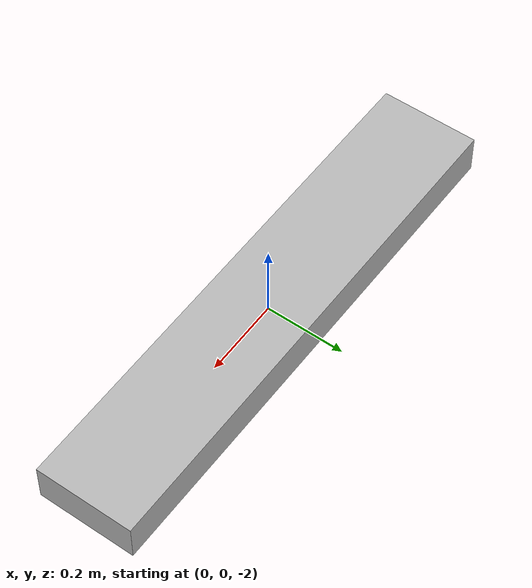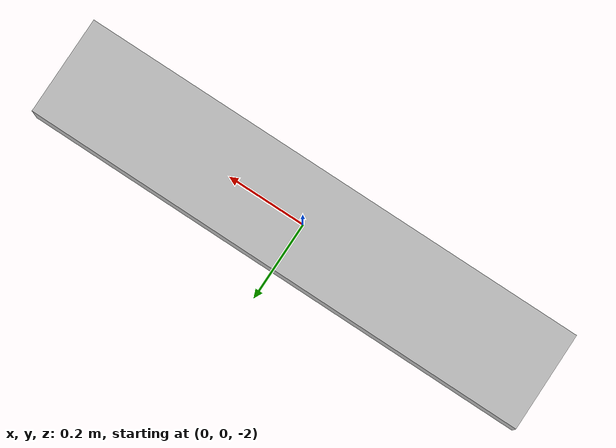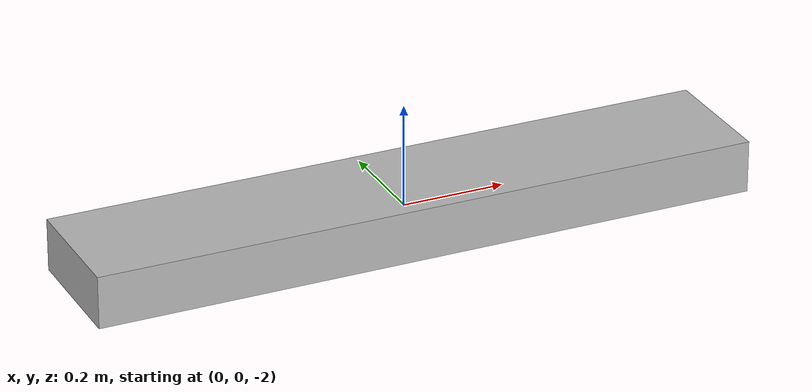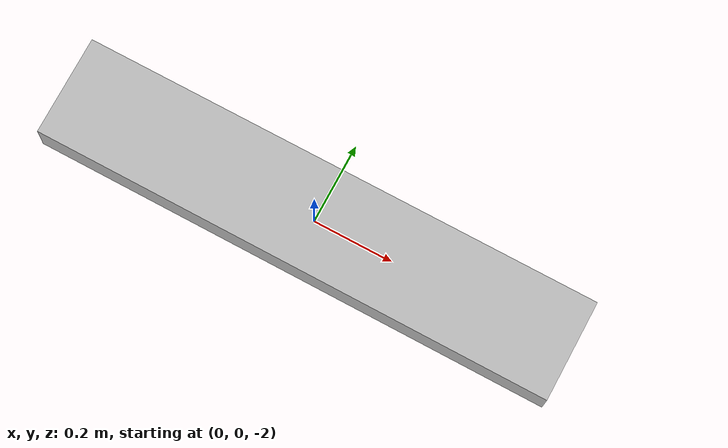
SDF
<?xml version="1.0"?>
<sdf version="1.10">
  <world name="ocean">
    <plugin filename="gz-sim-physics-system" name="gz::sim::systems::Physics"/>

    <plugin filename="gz-sim-buoyancy-system" name="gz::sim::systems::Buoyancy">
      <uniform_fluid_density>1025</uniform_fluid_density>
      <surface>0</surface>
    </plugin>

    <plugin filename="gz-sim-apply-link-wrench-system"
        name="gz::sim::systems::ApplyLinkWrench"/>

    <model name="seafloor">
      <static>true</static>
      <pose>0 0 -20 0 0 0</pose>
      <link name="link">
        <collision name="collision">
          <geometry><plane><normal>0 0 1</normal></plane></geometry>
        </collision>
      </link>
    </model>

    <model name="glider">
      <pose>0 0 -2 0 0 0</pose>
      <link name="body">
        <inertial>
          <mass>35.0</mass>
          <inertia>
            <ixx>1.0</ixx><iyy>4.0</iyy><izz>4.0</izz>
            <ixy>0</ixy><ixz>0</ixz><iyz>0</iyz>
          </inertia>
        </inertial>

        <collision name="collision">
          <geometry><box><size>1.30 0.25 0.102</size></box></geometry>
        </collision>

        <visual name="visual">
          <geometry><box><size>1.30 0.25 0.102</size></box></geometry>
        </visual>
      </link>
      <plugin filename="gz-sim-pose-publisher-system"
        name="gz::sim::systems::PosePublisher">
        <publish_link_pose>true</publish_link_pose>
        <publish_model_pose>true</publish_model_pose>
        <update_frequency>10</update_frequency>
      </plugin>
    </model>
  </world>
</sdf>
